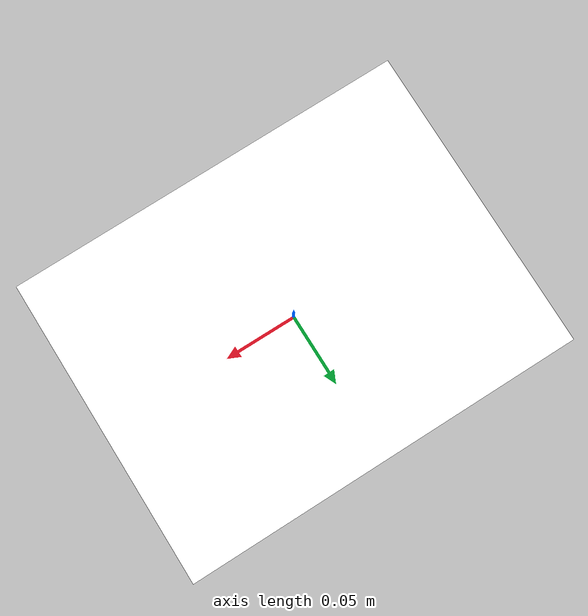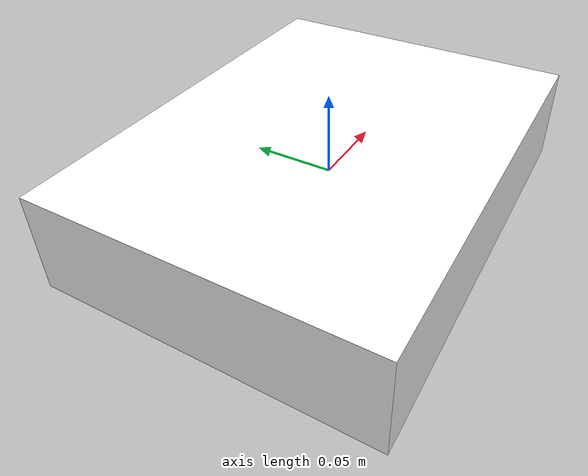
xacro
<?xml version="1.0"?>
<robot xmlns:xacro="http://www.ros.org/wiki/xacro"  name="robot">

    <xacro:include filename="inertial_macros.xacro" />

    <material name="white">
        <color rgba="1 1 1 1" />
    </material>

    <material name="orange">
        <color rgba="1 0.3 0.1 1" />
    </material>

    <material name="blue">
        <color rgba="0.2 0.2 1 1" />
    </material>

    <material name="black">
        <color rgba="0 0 0 1" />
    </material>

    <material name="red">
        <color rgba="1 0 0 1" />
    </material>

    <!--BASE LINK-->

    <link name="base_link">

    </link>

    <!--CHASSIS LINK-->

    <joint name="chassis_joint" type="fixed">
        <parent link="base_link"/>
        <child link="chassis"/>
        <origin xyz="-0.13 0 0"/>
    </joint>

    <link name="chassis">
        <visual>
            <origin xyz="0.13 0 0"/>
            <geometry>
                <box size="0.26 0.2 0.06"/>
            </geometry>
            <material name="white"/>
        </visual>
        <collision>
            <origin xyz="0.13 0 0"/>
            <geometry>
                <box size="0.26 0.2 0.06"/>
            </geometry>
        </collision>
        <xacro:inertial_box mass="2.5" x="0.26" y="0.2" z="0.06">
            <origin xyz="0.13 0 0" rpy="0 0 0"/>
        </xacro:inertial_box>
    </link>

    <gazebo reference="chassis">
        <material>Gazebo/White</material>
    </gazebo>

    <!--LEFT BACK WHEEL LINK-->

</robot>
